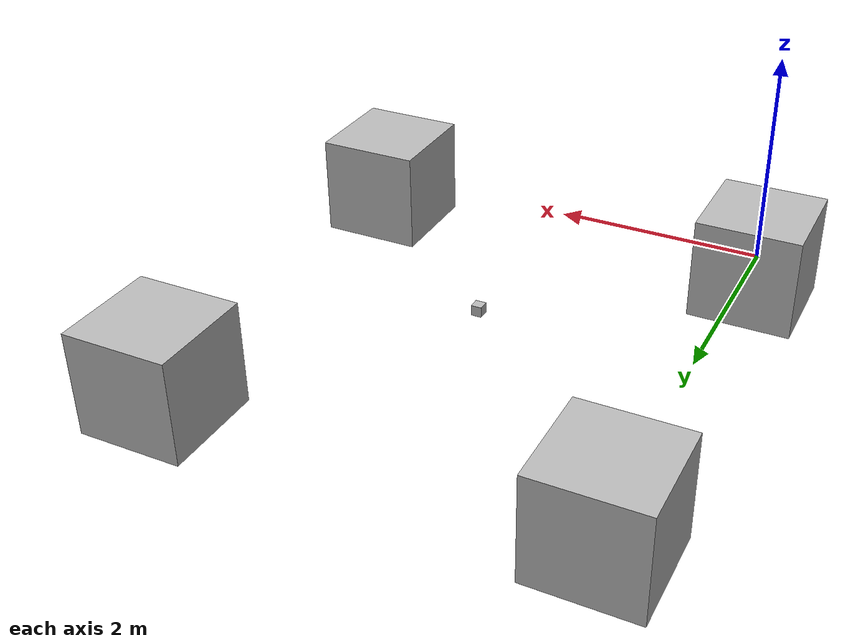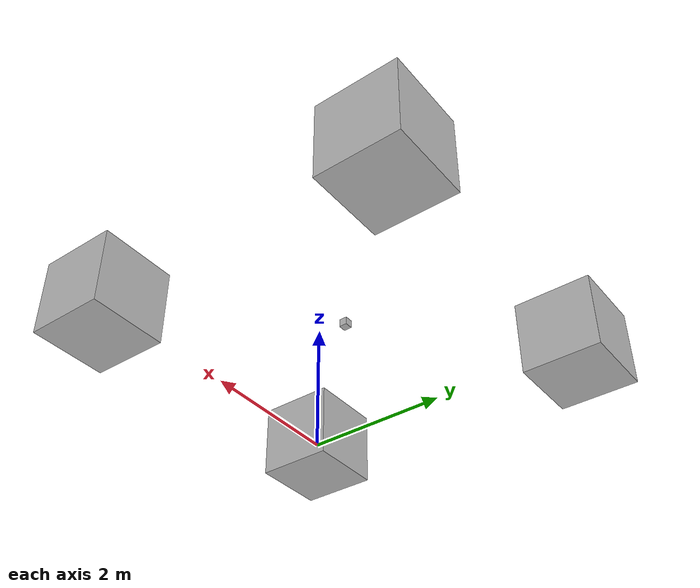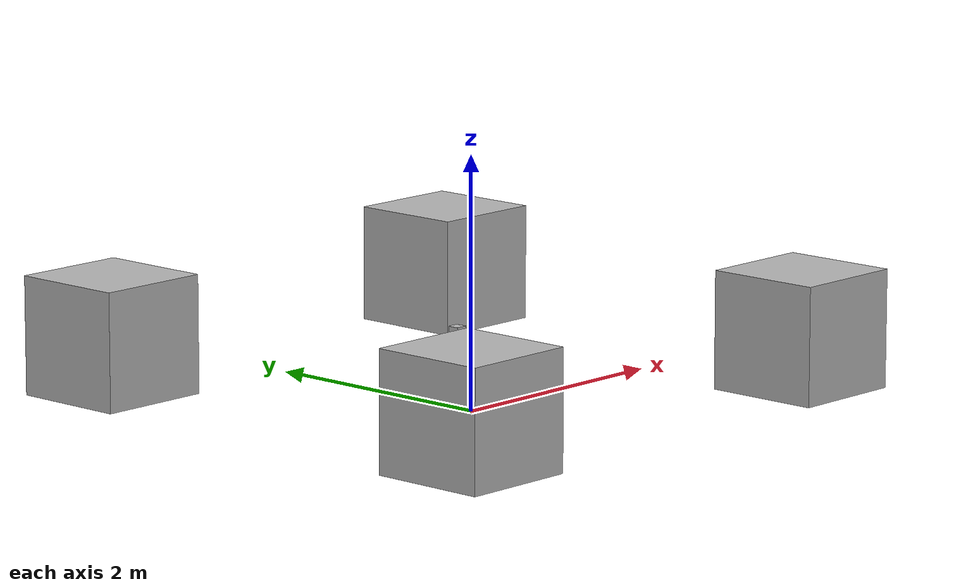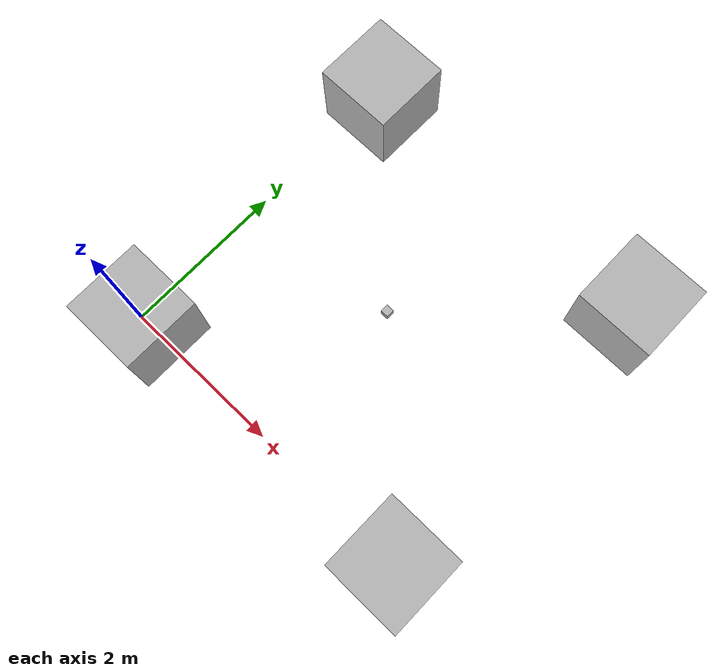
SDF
<?xml version="1.0"?>
<sdf version="1.6">
  <model name="own">

 <plugin
    filename="ignition-gazebo-thruster-system"
    name="ignition::gazebo::systems::Thruster">
    <namespace>thruster</namespace>
    <topic>cmd</topic>
    <joint_name>propjoint</joint_name>
    <thrust_coefficient>0.004422</thrust_coefficient>
    <fluid_density>1000</fluid_density>
    <propeller_diameter>0.2</propeller_diameter>
</plugin>
<plugin filename="ignition-gazebo-imu-system"
        name="ignition::gazebo::systems::Imu">
</plugin>
    <pose>0 0 0 0 0 0</pose>
    <link name="base_link">
        <pose>0 0 0 0 0 0</pose>
        <inertial>
        <mass>0</mass>
        <inertia>
          <ixx>0</ixx>
          <iyy>0</iyy>
          <izz>0</izz>
        </inertia>
      </inertial>
          <sensor name="imu_sensor" type="imu">
	    <always_on>1</always_on>
	    <update_rate>1</update_rate>
	    <visualize>true</visualize>
	    <topic>/imu/data</topic>
	     <frame_id>imu_link</frame_id>
	</sensor>
    </link>

      <link name="propeller">
      <pose>2 2 0 0 0 0</pose>
        <mass>0.0000000000001</mass>

      <visual name="propeller_visual">
          <geometry>
              <box>
                  <size>0.1 0.1 0.1</size>
              </box>
          </geometry>
      </visual>
  </link>

      <include>
      <uri>file://bbccuu</uri>
      <name>bcu1</name>
      <pose>0 0 0 0 0 0</pose>
          <plugin
      filename="ignition-gazebo-buoyancy-engine-system"
      name="ignition::gazebo::systems::BuoyancyEngine">
      <link_name>body</link_name>
      <namespace>bcu1c</namespace>
      <min_volume>0.0</min_volume>
      <neutral_volume>0.002</neutral_volume>
      <default_volume>0.002</default_volume>
      <max_volume>0.009</max_volume>
      <max_inflation_rate>0.00001</max_inflation_rate>
    </plugin>
      </include>
      <include>

      <uri>file://bbccuu</uri>
      <name>bcu2</name>
      <pose>0 4 0 0 0 0</pose>
               <plugin
      filename="ignition-gazebo-buoyancy-engine-system"
      name="ignition::gazebo::systems::BuoyancyEngine">
      <link_name>body</link_name>
      <namespace>bcu2c</namespace>
      <min_volume>0.0</min_volume>
      <neutral_volume>0.002</neutral_volume>
      <default_volume>0.002</default_volume>
      <max_volume>0.009</max_volume>
      <max_inflation_rate>0.00001</max_inflation_rate>
    </plugin>
      </include>

            <include>
      <uri>file://bbccuu</uri>
      <name>bcu3</name>
      <pose>4 0 0 0 0 0</pose>
               <plugin
      filename="ignition-gazebo-buoyancy-engine-system"
      name="ignition::gazebo::systems::BuoyancyEngine">
      <link_name>body</link_name>
      <namespace>bcu3c</namespace>
      <min_volume>0.0</min_volume>
      <neutral_volume>0.002</neutral_volume>
      <default_volume>0.002</default_volume>
      <max_volume>0.009</max_volume>
      <max_inflation_rate>0.00001</max_inflation_rate>
    </plugin>
      </include>

            <include>
      <uri>file://bbccuu</uri>
      <name>bcu4</name>
      <pose>4 4 0 0 0 0</pose>
         <plugin
      filename="ignition-gazebo-buoyancy-engine-system"
      name="ignition::gazebo::systems::BuoyancyEngine">
      <link_name>body</link_name>
      <namespace>bcu4c</namespace>
      <min_volume>0.0</min_volume>
      <neutral_volume>0.002</neutral_volume>
      <default_volume>0.002</default_volume>
      <max_volume>0.009</max_volume>
      <max_inflation_rate>0.00001</max_inflation_rate>
    </plugin>
      </include>

    <joint name='fixed_joint3' type='fixed'>
      <parent>base_link</parent>
      <child>bcu1</child>
      <pose>0 0 0 0 0 0</pose> <!-- Joint position is local to body1, since they're already separated -->
    </joint>

    <joint name='fixed_joint' type='fixed'>
      <parent>base_link</parent>
      <child>bcu2</child>
      <pose>0 0 0 0 0 0</pose> <!-- Joint position is local to body1, since they're already separated -->
    </joint>
    <joint name='fixed_joint1' type='fixed'>
      <parent>base_link</parent>
      <child>bcu3</child>
      <pose>0 0 0 0 0 0</pose> <!-- Joint position is local to body1, since they're already separated -->
    </joint>
        <joint name='fixed_joint2' type='fixed'>
      <parent>base_link</parent>
      <child>bcu4</child>
      <pose>0 0 0 0 0 0</pose> <!-- Joint position is local to body1, since they're already separated -->
    </joint>

        <joint name="propjoint" type="revolute">
      <pose>0 0 0 0 0 0</pose>
      <parent>base_link</parent>
      <child>propeller</child>
      <axis>
        <xyz>0 0 1</xyz>
        <limit>
          <lower>-1e+12</lower>
          <upper>1e+12</upper>
          <effort>-1</effort>
          <velocity>-1</velocity>
        </limit>
      </axis>
    </joint>

  </model>
</sdf>

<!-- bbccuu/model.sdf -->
<sdf version="1.6">
  <model name="bbccuu">
    <pose>0 0 0 0 0 0</pose>

   <link name='body'>
      <pose>0 0 0 0 0 0</pose> <!-- Position body1 at the origin -->
      <inertial>
        <mass>1000</mass>
        <inertia>
          <ixx>133.3333</ixx>
          <iyy>133.3333</iyy>
          <izz>133.3333</izz>
        </inertia>
      </inertial>
      <visual name='body_visual'>
        <geometry>
          <box>
            <size>1 1 1</size>
          </box>
        </geometry>
      </visual>
      <collision name='body_collision'>
        <geometry>
          <box>
            <size>1 1 1</size>
          </box>
        </geometry>
      </collision>
    </link>

  </model>

</sdf>
